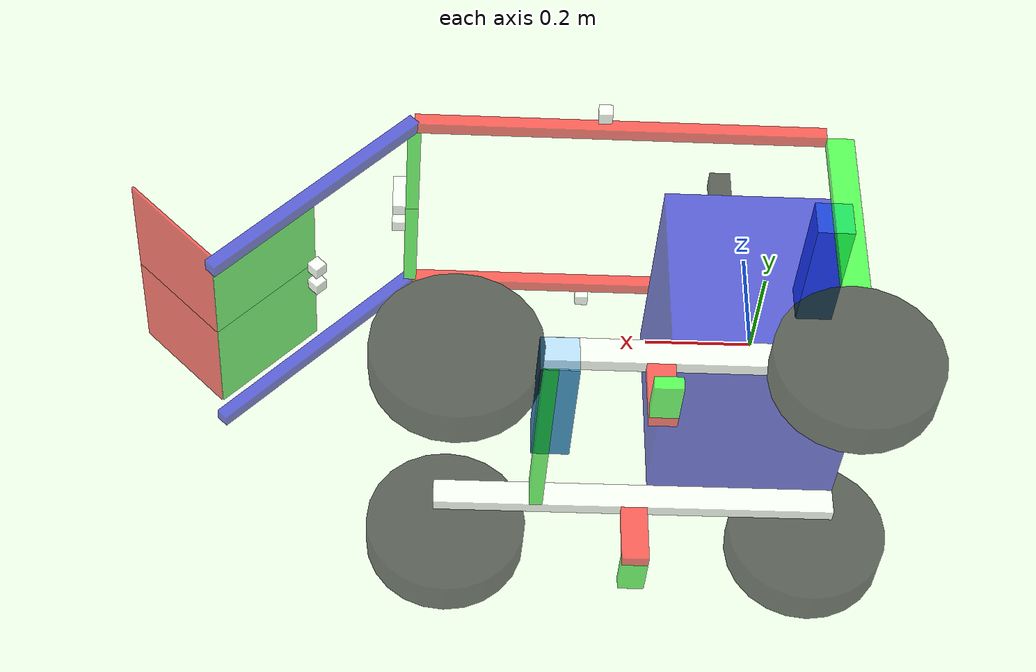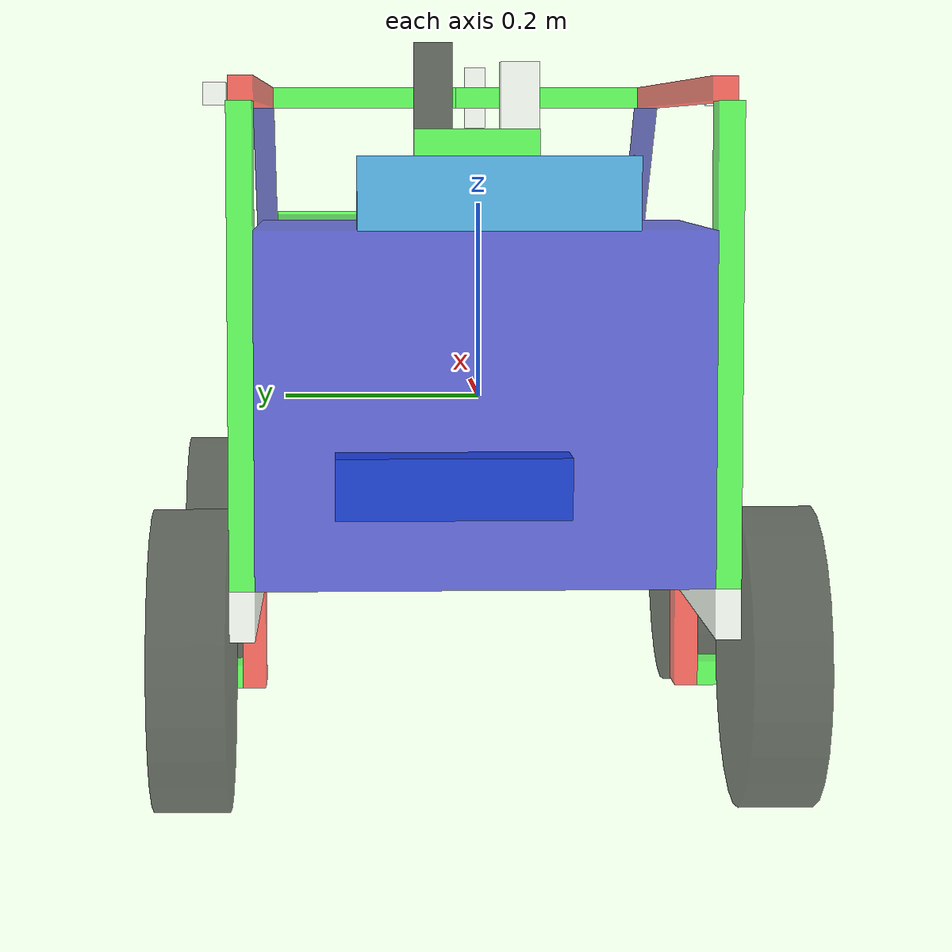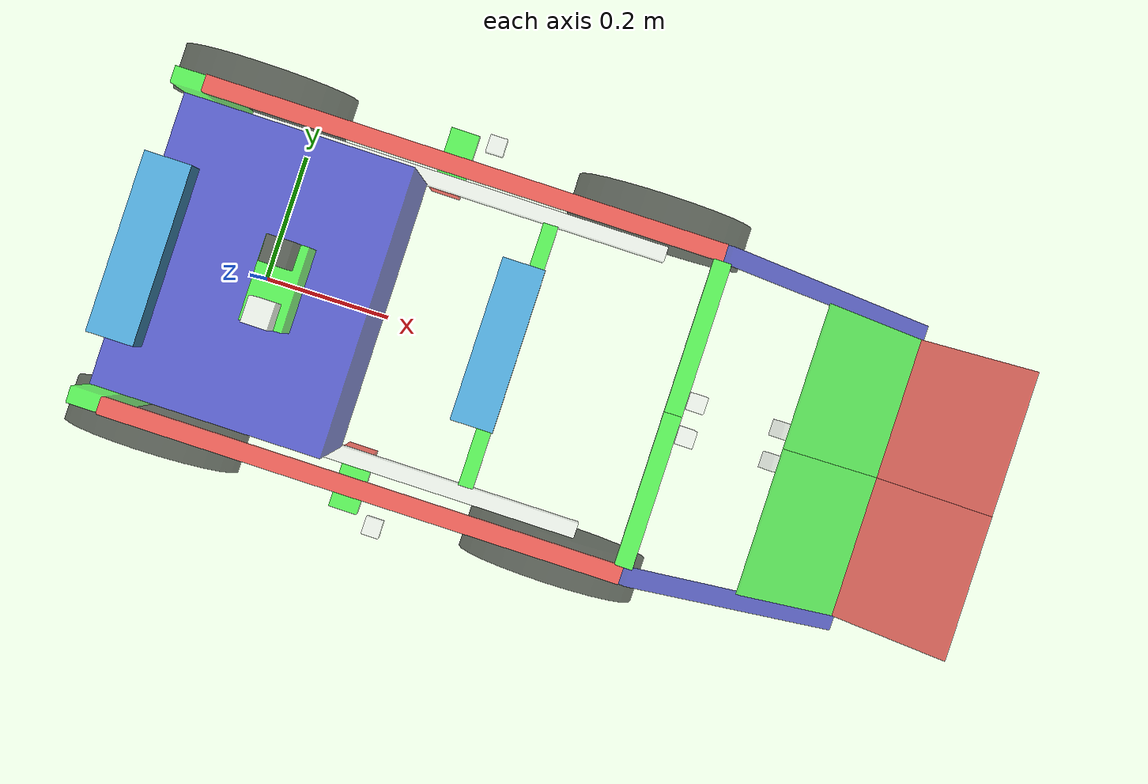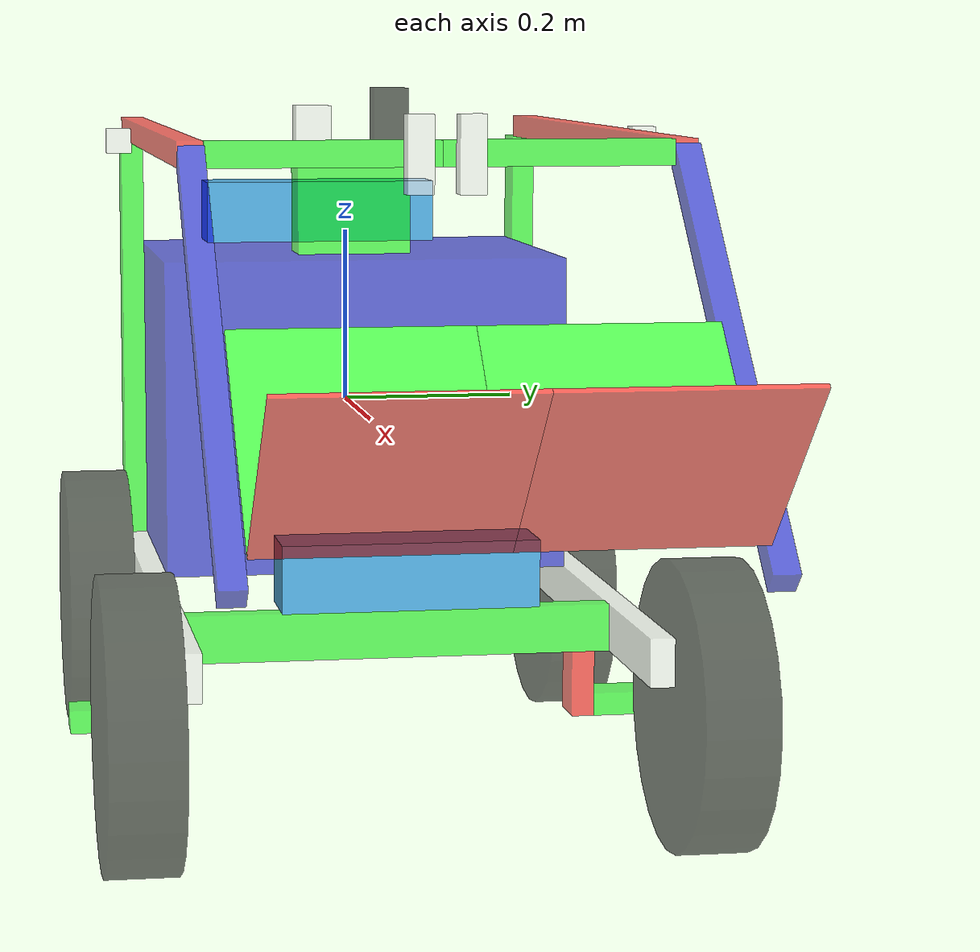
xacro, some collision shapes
<?xml version="1.0"?>
<!--rosrun xacro xacro cr17.xacro > cr17.urdf && roslaunch urdf_tutorial display.launch model:='$(find simulation_2017)/urdf/cr17.urdf' gui:=True-->
<robot name="cr17" xmlns:xacro="http://ros.org/wiki/xacro">

  <xacro:property name="transparency" value="0.6" />

  <xacro:property name="oneinch" value="0.0254" />
  <xacro:property name="pi" value="3.1415" />

  <xacro:property name="width" value=".2" />
  <xacro:property name="leglen" value=".6" />
  <xacro:property name="polelen" value=".2" />
  <xacro:property name="bodylen" value=".6" />

  <xacro:property name="spacebetweenmirrors" value="${oneinch*18}" />

  <xacro:property name="baselen" value="${oneinch*30.5}" /> <!--The base is referred to here is the peice that the wheels attach to-->
  <xacro:property name="basewidth" value="${oneinch}" />
  <xacro:property name="baseheight" value="${oneinch*2}" />

  <xacro:property name="armbaselength" value="${oneinch*2}" />
  <xacro:property name="armbasewidth" value="${oneinch}" />
  <xacro:property name="armbaseheight" value="${oneinch*19}" />

  <xacro:property name="controlsboxlength" value="${oneinch*14.25}" />
  <xacro:property name="controlsboxwidth" value="${oneinch*18}" />
  <xacro:property name="controlsboxheight" value="${oneinch*14}" />

  <xacro:property name="wheeldiam" value="${oneinch*12}" />
  <xacro:property name="wheelwidth" value="${oneinch*3}" />
  <xacro:property name="wheeldrop" value="${oneinch*2}" />

  <xacro:property name="linactmntwidth" value="${oneinch*2}" />
  <xacro:property name="linactmntdistancefromback" value="${oneinch*14.5+linactmntwidth/2}" /> <!--The distance the linear actuator lower mount is from the back of the robot-->
  <xacro:property name="linactmntverticallength" value="${oneinch*4.5}" />
  <xacro:property name="linactmnthorizontallength" value="${oneinch*3.5}" />
  <xacro:property name="linactmntlength" value="${oneinch}" />

  <xacro:property name="upperarmaxlebardistance" value="${oneinch}" />
  <xacro:property name="upperarmlength" value="${oneinch*30.75}" /><!--originally 31in-->
  <xacro:property name="upperarmwidth" value="${oneinch}" />
  <xacro:property name="upperarmheight" value="${oneinch}" />
  <xacro:property name="upperlinactmntdist" value="${oneinch*16.68}" />

  <xacro:property name="lowerarmangle" value="2.35619" />
  <xacro:property name="lowerarmlength" value="${oneinch*20}" />
  <xacro:property name="lowerarmwidth" value="${oneinch}" />
  <xacro:property name="lowerarmheight" value="${oneinch}" />

  <xacro:property name="scooplinactmountbarlength" value="${oneinch*3}" />
  <xacro:property name="scooplinactmountbaroffset" value="${oneinch*7}" />

  <xacro:property name="scooplength" value="${oneinch*8.6875}" />
  <xacro:property name="scoopheight" value="${oneinch*9.6875}" />
  <xacro:property name="scoopwidth" value="${oneinch*18}" />
  <xacro:property name="scoopdistancefromaxis" value="0.03" /> <!--get actual value -->
  <xacro:property name="scoopdistanceabovecornerofaxis" value="0.04" /> <!-- get actual value -->
  <xacro:property name="scoopaxisbackfrombar" value="${oneinch}" /> <!--get actual value -->
  <xacro:property name="scoopaxisabovebar" value="${oneinch/2}" /> <!--get actual value-->

  <xacro:property name="scoopplaneangle" value="${pi/2}" />

  <xacro:property name="scoopactmountdown" value="0.02" /> <!--get actual value -->
  <xacro:property name="scoopactmountback" value="0.03" /> <!-- get actual value -->
  <xacro:property name="scoopactmountin" value="${oneinch*8}" /> <!--based on the drawing having the center line of the actuator and inch past the offset, doublecheck-->

  <xacro:property name="fronthorizontalsupportcontrolsboxoffset" value="${oneinch*8.5}" />
  <xacro:property name="fronthorizontalsupportlength" value="${oneinch*18}" />
  <xacro:property name="fronthorizontalsupportwidth" value="${oneinch}" />
  <xacro:property name="fronthorizontalsupportheight" value="${oneinch*2}" />

  <xacro:property name="lidarmountheight" value="0.1" /> <!--get an actual value-->
  <xacro:property name="hokuyolength" value="0.04" /><!--get an actual value-->
  <xacro:property name="hokuyowidth" value="0.04" /><!--get an actual value-->
  <xacro:property name="hokuyoheight" value="0.09" /><!--get an actual value-->
  <xacro:property name="sicklength" value="0.04" /><!--get an actual value-->
  <xacro:property name="sickwidth" value="0.04" /><!--get an actual value-->
  <xacro:property name="sickheight" value="0.07" /><!--get an actual value-->

  <material name="blue">
    <color rgba="0 0 .8 ${transparency}"/>
  </material>

  <material name="black">
    <color rgba="0 0 0 ${transparency}"/>
  </material>

  <material name="white">
    <color rgba="1 1 1 ${transparency}"/>
  </material>

  <material name="red">
    <color rgba="1 0 0 ${transparency}"/>
  </material>

  <material name="green">
    <color rgba="0 1 0 ${transparency}"/>
  </material>

  <xacro:macro name="default_inertial" params="mass">
    <inertial>
      <mass value="${mass}" />
      <inertia ixx="1.0" ixy="0.0" ixz="0.0" iyy="1.0" iyz="0.0" izz="1.0" />
    </inertial>
  </xacro:macro>

  <link name="base_link">
    <visual>
      <geometry>
        <box size="${controlsboxlength} ${controlsboxwidth} ${controlsboxheight}"/>
      </geometry>
      <material name="blue"/>
    </visual>
    <collision>
      <geometry>
        <box size="${controlsboxlength} ${controlsboxwidth} ${controlsboxheight}"/>
      </geometry>
    </collision>
    <xacro:default_inertial mass="0"/>
  </link>
  <gazebo reference="base_link">
    <material>Gazebo/Blue</material>
  </gazebo>

  <xacro:macro name="wheel" params="prefix suffix reflect">
    <link name="${prefix}_${suffix}_wheel">
      <visual>
        <origin xyz="0 0 0" rpy="${pi/2} 0 0" />
        <geometry>
          <cylinder radius="${wheeldiam/2}" length="${wheelwidth}"/>
        </geometry>
        <material name="black"/>
        <origin xyz="0 0 0" rpy="0 0 0" />
      </visual>
      <collision>
        <origin xyz="0 0 0" rpy="${pi/2} 0 0" />
        <geometry>
          <cylinder radius="${wheeldiam/2}" length="${wheelwidth}"/>
        </geometry>
        <origin xyz="0 0 0" rpy="0 0 0" />
      </collision>
      <xacro:default_inertial mass="1"/>
    </link>
    <joint name="${prefix}_${suffix}_wheel_joint" type="continuous">
      <axis xyz="0 1 0" rpy="0 0 0" />
      <parent link="${prefix}_${suffix}_wheel_mount"/>
      <child link="${prefix}_${suffix}_wheel"/>
      <origin xyz="0 0 0" rpy="0 0 0"/>
    </joint>

    <!-- This block provides the simulator (Gazebo) with information on a few additional
    physical properties. See http://gazebosim.org/tutorials/?tut=ros_urdf for more-->
    <gazebo reference="${prefix}_${suffix}_wheel">
      <mu1 value="200.0"/>
      <mu2 value="100.0"/>
      <kp value="10000000.0" />
      <kd value="1.0" />
      <material>Gazebo/Grey</material>
    </gazebo>

    <!-- This block connects the wheel joint to an actuator (motor), which informs both
    simulation and visualization of the robot -->
    <transmission name="${prefix}_${suffix}_wheel_trans" type="SimpleTransmission">
      <type>transmission_interface/SimpleTransmission</type>
      <actuator name="${prefix}_${suffix}_wheel_motor">
        <mechanicalReduction>1</mechanicalReduction>
      </actuator>
      <joint name="${prefix}_${suffix}_wheel_joint">
        <hardwareInterface>VelocityJointInterface</hardwareInterface>
      </joint>
    </transmission>
  </xacro:macro>

  <xacro:macro name="side_base" params="prefix reflect">
    <link name="${prefix}_armbase">
      <visual>
        <geometry>
          <box size="${armbaseheight} ${armbasewidth} ${armbaselength}"/>
        </geometry>
        <origin xyz="0 0 ${armbaseheight/2}" rpy="0 ${pi/2} 0"/>
        <material name="green"/>
      </visual>
      <collision>
        <geometry>
          <box size="0 0 0"/>
        </geometry>
        <origin xyz="0 0 ${armbaseheight/2}" rpy="0 ${pi/2} 0"/>
      </collision>
      <xacro:default_inertial mass="3"/>
    </link>
    <gazebo reference="${prefix}_armbase">
      <material>Gazebo/White</material>
    </gazebo>

    <joint name="base_to_${prefix}_leg" type="fixed">
      <parent link="base_link"/>
      <child link="${prefix}_base"/>
      <origin xyz="${baselen/2- controlsboxlength/2} ${reflect*(controlsboxwidth/2+basewidth/2)} -${controlsboxheight/2+baseheight/2}" />
    </joint>

    <link name="${prefix}_base">
      <visual>
        <geometry>
          <box size="${baselen} ${basewidth} ${baseheight}"/>
        </geometry>
        <material name="white"/>
      </visual>
      <collision>
        <geometry>
          <box size="${baselen} ${basewidth} ${baseheight}"/>
        </geometry>
      </collision>
      <xacro:default_inertial mass="3"/>
    </link>
    <gazebo reference="${prefix}_base">
      <material>Gazebo/White</material>
    </gazebo>

    <joint name="${prefix}_base_joint" type="fixed">
      <parent link="${prefix}_base"/>
      <child link="${prefix}_armbase"/>
      <origin xyz="-${baselen/2-armbaselength/2} 0 ${baseheight/2}"/>
    </joint>

    <link name="${prefix}_front_wheel_mount">
      <visual>
        <geometry>
          <box size="0 0 0"/>
        </geometry>
        <material name="white"/>
      </visual>
      <collision>
        <geometry>
          <box size="0 0 0"/>
        </geometry>
      </collision>
      <xacro:default_inertial mass="1"/>
    </link>
    <joint name="${prefix}_front_wheel_mount_joint"  type="fixed">
      <parent link="${prefix}_base"/>
      <child link="${prefix}_front_wheel_mount"/>
      <origin xyz="${baselen/2-oneinch} ${reflect*(wheelwidth/2+basewidth/2)} -${wheeldrop}"/>
    </joint>

    <link name="${prefix}_back_wheel_mount">
      <visual>
        <geometry>
          <box size="0 0 0"/>
        </geometry>
        <material name="white"/>
      </visual>
      <collision>
        <geometry>
          <box size="0 0 0"/>
        </geometry>
      </collision>
      <xacro:default_inertial mass="1"/>
    </link>
    <joint name="${prefix}_back_wheel_mount_joint"  type="fixed">
      <parent link="${prefix}_base"/>
      <child link="${prefix}_back_wheel_mount"/>
      <origin xyz="-${baselen/2-oneinch*2} ${reflect*(wheelwidth/2+basewidth/2)} -${wheeldrop}"/>
    </joint>

    <xacro:wheel prefix="${prefix}" suffix="front" reflect="1"/>
    <xacro:wheel prefix="${prefix}" suffix="back" reflect="-1"/>

    <link name="${prefix}_linactmnt_vert">
      <visual>
        <geometry>
          <box size="${linactmntwidth} ${linactmntlength} ${linactmntverticallength}"/>
        </geometry>
        <material name="red"/>
      </visual>
      <collision>
        <geometry>
          <box size="${linactmntwidth} ${linactmntlength} ${linactmntverticallength}"/>
        </geometry>
      </collision>
      <xacro:default_inertial mass="0.001"/>
    </link>
    <joint name="${prefix}_linactmnt_vert_link" type="fixed">
      <parent link="${prefix}_base"/>
      <child link="${prefix}_linactmnt_vert"/>
      <origin xyz="0 0 -${linactmntverticallength/2+baseheight/2}"/>
    </joint>

    <link name="${prefix}_linactmnt_horiz">
      <visual>
        <geometry>
          <box size="${linactmntwidth} ${linactmntlength} ${linactmnthorizontallength}"/>
        </geometry>
        <material name="green"/>
      </visual>
      <collision>
        <geometry>
          <box size="${linactmntwidth} ${linactmntlength} ${linactmnthorizontallength}"/>
        </geometry>
      </collision>
      <xacro:default_inertial mass="0.001"/>
    </link>
    <joint name="${prefix}_linactmnt_horiz_link" type="fixed">
      <parent link="${prefix}_linactmnt_vert"/>
      <child link="${prefix}_linactmnt_horiz"/>
      <origin xyz="0 ${reflect*(linactmnthorizontallength/2+linactmntlength/2)} -${linactmntverticallength/2-linactmntlength/2}" rpy="${pi/2} 0 0"/>
    </joint>

    <link name="${prefix}_upper_arm">
      <visual>
        <geometry>
          <box size="${upperarmlength} ${upperarmwidth} ${upperarmheight}"/>
        </geometry>
        <origin xyz="${upperarmlength/2} 0 0" rpy="0 0 0"/>
        <material name="red"/>
      </visual>
      <collision>
        <geometry>
          <box size="0 0 0"/>
        </geometry>
      </collision>
      <xacro:default_inertial mass="3"/>
    </link>
    <joint name="${prefix}_armbase_to_upperarm" type="continuous">
      <parent link="${prefix}_armbase"/>
      <child link="${prefix}_upper_arm"/>
      <origin xyz="${upperarmaxlebardistance} 0 ${armbaseheight+upperarmwidth/2}"/>
      <axis xyz="0 1 0"/>
    </joint>

    <transmission name="${prefix}_armbase_to_upperarm_trans" type="SimpleTransmission">
      <type>transmission_interface/SimpleTransmission</type>
      <actuator name="$motor_${prefix}_armbase_to_upperarm">
        <mechanicalReduction>1</mechanicalReduction>
      </actuator>
      <joint name="${prefix}_armbase_to_upperarm">
        <hardwareInterface>PositionJointInterface</hardwareInterface>
      </joint>
    </transmission>

    <link name="${prefix}_upper_linear_actuator_mount">
      <visual>
        <geometry>
          <box size="${oneinch} ${oneinch} ${oneinch}"/>
        </geometry>
        <material name="white"/>
      </visual>
      <collision>
        <geometry>
          <box size="0 0 0"/>
        </geometry>
      </collision>
      <xacro:default_inertial mass="0.001"/>
    </link>
    <joint name="${prefix}_upper_arm_to_upper_linear_actuator_mount" type="fixed">
      <parent link="${prefix}_upper_arm"/>
      <child link="${prefix}_upper_linear_actuator_mount"/>
      <origin xyz="${upperlinactmntdist} ${reflect*linactmnthorizontallength/2} 0"/>
    </joint>

    <link name="${prefix}_lower_arm">
      <visual>
        <geometry>
          <box size="${lowerarmlength} ${lowerarmwidth} ${lowerarmheight}"/>
        </geometry>
        <origin xyz="${lowerarmlength/2} 0 0" rpy="0 0 0"/>
        <material name="blue"/>
      </visual>
      <collision>
        <geometry>
          <box size="0 0 0"/>
        </geometry>
      </collision>
      <xacro:default_inertial mass="3"/>
    </link>
    <joint name="${prefix}_upperarm_to_lower_arm" type="fixed">
      <parent link="${prefix}_upper_arm"/>
      <child link="${prefix}_lower_arm"/>
      <origin xyz="${upperarmlength} 0 0" rpy="0 ${pi-lowerarmangle} 0"/>
    </joint>

    <link name="${prefix}_lower_brace_bar">
      <visual>
        <geometry>
          <box size="${spacebetweenmirrors/2} ${oneinch} ${oneinch}"/>
        </geometry>
        <origin xyz="${spacebetweenmirrors/4} 0 0"/>
        <material name="green"/>
      </visual>
      <collision>
        <geometry>
          <box size="0 0 0"/>
        </geometry>
      </collision>
      <xacro:default_inertial mass="0" />
    </link>
    <joint name="${prefix}_upper_arm_to_lower_arm_brace_bar" type="fixed">
      <parent link="${prefix}_upper_arm"/>
      <child link="${prefix}_lower_brace_bar"/>
      <origin xyz="${upperarmlength} ${reflect*(-upperarmwidth/2)} 0" rpy="0 0 ${reflect*(-pi/2)}"/>
    </joint>

    <link name="${prefix}_scoop_actuator_mount_bar">
      <visual>
        <geometry>
          <box size="${oneinch} ${oneinch} ${scooplinactmountbarlength}"/>
        </geometry>
        <material name="white"/>
      </visual>
      <collision>
        <geometry>
          <box size="0 0 0"/>
        </geometry>
      </collision>
      <xacro:default_inertial mass="0.001" />
    </link>
    <joint name="to_${prefix}_scoop_actuator_mount_bar" type="fixed" >
      <parent link="${prefix}_lower_brace_bar"/>
      <child link="${prefix}_scoop_actuator_mount_bar" />
      <origin xyz="${scooplinactmountbaroffset+oneinch/2+oneinch/2} ${reflect*oneinch} 0"/>
    </joint>

    <link name="${prefix}_scoop_axis">
      <visual>
        <geometry>
          <box size="0 0 0"/>
        </geometry>
      </visual>
      <xacro:default_inertial mass="0.001" />
    </link>
    <link name="${prefix}_scoop_back_plane">
      <visual>
        <geometry>
          <box size="${scoopheight} ${scoopwidth/2} 0.005" />
        </geometry>
        <material name="green"/>
        <origin xyz="${-scoopheight/2} ${-reflect*scoopwidth/4} 0" />
      </visual>
      <xacro:default_inertial mass="0.001" />
    </link>
    <link name="${prefix}_scoop_lower_plane">
      <visual>
        <geometry>
          <box size="0.005 ${scoopwidth/2} ${scooplength}" />
        </geometry>
        <material name="red"/>
        <origin xyz="0 ${-reflect*scoopwidth/4} ${scooplength/2}" />
      </visual>
      <xacro:default_inertial mass="0.001" />
    </link>
    <joint name="${prefix}_scoop_axis_to_scoop" type="fixed">
      <parent link="${prefix}_scoop_axis"/>
      <child link="${prefix}_scoop_back_plane"/>
      <origin xyz="0 0 0"/>
    </joint>
    <joint name="${prefix}_scoop_plane_attach" type="fixed">
      <parent link="${prefix}_scoop_back_plane"/>
      <child link="${prefix}_scoop_lower_plane"/>
      <origin xyz="0 0 0" rpy="0 ${pi/2-scoopplaneangle} 0"/>
    </joint>
    <joint name="${prefix}_lower_arm_to_scoop_axis" type="continuous">
      <parent link="${prefix}_lower_arm"/>
      <child link="${prefix}_scoop_axis"/>
      <origin xyz="${lowerarmlength-scoopaxisbackfrombar} ${-reflect*lowerarmwidth/2} ${scoopaxisabovebar+oneinch/2}"/>
      <axis xyz="0 1 0" rpy="0 0 0" />
    </joint>

    <transmission name="${prefix}_scoop_trans" type="SimpleTransmission">
      <type>transmission_interface/SimpleTransmission</type>
      <actuator name="$motor_${prefix}_scoop">
        <mechanicalReduction>1</mechanicalReduction>
      </actuator>
      <joint name="${prefix}_lower_arm_to_scoop_axis">
        <hardwareInterface>PositionJointInterface</hardwareInterface>
      </joint>
    </transmission>

    <link name="${prefix}_edge_of_scoop">
      <visual>
        <geometry>
          <box size="0 0 0" />
        </geometry>
        <material name="red"/>
        <origin xyz="0 ${-reflect*scoopwidth/4} ${scooplength/2}" />
      </visual>
      <xacro:default_inertial mass="0.00001" />
    </link>
    <joint name="${prefix}_edge_of_scoop" type="fixed">
      <parent link="${prefix}_scoop_lower_plane"/>
      <child link="${prefix}_edge_of_scoop"/>
      <origin xyz="0 0 ${scooplength}"/>
    </joint>

    <link name="${prefix}_scoop_actuator_mount">
      <visual>
        <geometry>
          <box size="${oneinch} ${oneinch} ${oneinch}"/>
        </geometry>
        <material name="white"/>
      </visual>
    </link>
    <joint name="${prefix}_scoop_actuator_mount_joint" type="fixed">
      <parent link="${prefix}_scoop_back_plane"/>
      <child link="${prefix}_scoop_actuator_mount"/>
      <origin xyz="-${scoopheight-scoopactmountdown} ${-reflect*scoopactmountin} -${scoopactmountback}"/>
    </joint>
  </xacro:macro>

  <xacro:side_base prefix="right" reflect="-1" />
  <xacro:side_base prefix="left" reflect="1" />

  <xacro:macro name="kinect" params="prefix parentlink">
    <link name="${prefix}_kinect">
      <inertial>
        <mass value="0"/>
        <inertia ixx="1.0" ixy="0.0" ixz="0.0" iyy="1.0" iyz="0.0" izz="1.0"/>
      </inertial>
    </link>
    <gazebo reference="${prefix}_kinect">
      <material>Gazebo/Black</material>
    </gazebo>
    <joint name="${prefix}_toKinect" type="fixed">
      <parent link="${parentlink}"/>
      <child link="${prefix}_kinect"/>
      <origin rpy="0 0 0" xyz="0.01 0 0.04"/>
      <!--change the middle number of the rpy on this line to adjust kinect pitch -->
    </joint>
    <joint name="${prefix}_camera_rgb_joint" type="fixed">
      <origin rpy="0 0 0" xyz="0 0 0"/>
      <parent link="${prefix}_kinect"/>
      <child link="${prefix}_camera_rgb_frame"/>
    </joint>
    <link name="${prefix}_camera_rgb_frame"/>
    <joint name="${prefix}_camera_rgb_optical_joint" type="fixed">
      <origin rpy="-1.57079632679 0 -1.57079632679" xyz="0 0 0"/>
      <parent link="${prefix}_camera_rgb_frame"/>
      <child link="${prefix}_camera_rgb_optical_frame"/>
    </joint>
    <link name="${prefix}_camera_rgb_optical_frame"/>
    <joint name="${prefix}_camera_joint" type="fixed">
      <origin rpy="0 0 0" xyz="-0.031 0.0125 -0.016"/>
      <parent link="${prefix}_camera_rgb_frame"/>
      <child link="${prefix}_camera_link"/>
    </joint>
    <link name="${prefix}_camera_link">
      <visual>
        <origin rpy="0 0 1.57079632679" xyz="0 0 0"/>
        <geometry>
          <mesh filename="package://simulation_2017/meshes/kinect.dae"/>
        </geometry>
      </visual>
      <collision>
        <origin rpy="0 0 0" xyz="0.0 0.0 0.0"/>
        <geometry>
          <box size="0.07271 0.27794 0.073"/>
        </geometry>
      </collision>
      <inertial>
        <mass value="0.564"/>
        <origin xyz="0 0 0"/>
        <inertia ixx="0.003881243" ixy="0.0" ixz="0.0" iyy="0.000498940" iyz="0.0" izz="0.003879257"/>
      </inertial>
    </link>
    <joint name="${prefix}_camera_depth_joint" type="fixed">
      <origin rpy="0 0 0" xyz="0 0.025 0"/>
      <parent link="${prefix}_camera_rgb_frame"/>
      <child link="${prefix}_camera_depth_frame"/>
    </joint>
    <link name="${prefix}_camera_depth_frame"/>
    <joint name="${prefix}_camera_depth_optical_joint" type="fixed">
      <origin rpy="-1.57079632679 0 -1.57079632679" xyz="0 0 0"/>
      <parent link="${prefix}_camera_depth_frame"/>
      <child link="${prefix}_camera_depth_optical_frame"/>
    </joint>
    <link name="${prefix}_camera_depth_optical_frame"/>
    <gazebo reference="${prefix}_camera_link">
      <sensor name="${prefix}_camera" type="depth">
        <always_on>true</always_on>
        <update_rate>20.0</update_rate>
        <camera>
          <horizontal_fov>1.0471975512</horizontal_fov>
          <image>
            <format>R8G8B8</format>
            <width>640</width>
            <height>480</height>
          </image>
          <clip>
            <near>0.05</near>
            <far>8.0</far>
          </clip>
        </camera>
        <plugin filename="libgazebo_ros_openni_kinect.so" name="${prefix}_kinect_camera_controller">
          <cameraName>${prefix}_camera</cameraName>
          <alwaysOn>true</alwaysOn>
          <updateRate>10</updateRate>
          <imageTopicName>rgb/image_raw</imageTopicName>
          <depthImageTopicName>depth/image_raw</depthImageTopicName>
          <pointCloudTopicName>depth/points</pointCloudTopicName>
          <cameraInfoTopicName>rgb/camera_info</cameraInfoTopicName>
          <depthImageCameraInfoTopicName>depth/camera_info</depthImageCameraInfoTopicName>
          <frameName>${prefix}_camera_depth_optical_frame</frameName>
          <baseline>0.1</baseline>
          <distortion_k1>0.0</distortion_k1>
          <distortion_k2>0.0</distortion_k2>
          <distortion_k3>0.0</distortion_k3>
          <distortion_t1>0.0</distortion_t1>
          <distortion_t2>0.0</distortion_t2>
          <pointCloudCutoff>0.4</pointCloudCutoff>
        </plugin>
      </sensor>
    </gazebo>
  </xacro:macro>

  <link name="rear_kinect_mount">
    <visual>
      <geometry>
        <box size="${oneinch} ${oneinch} 0.001"/>
      </geometry>
      <material name="white"/>
    </visual>
  </link>
  <joint name="to_rear_kinect_mount" type="fixed">
    <parent link="base_link" />
    <child link="rear_kinect_mount"/>
    <origin xyz="-${controlsboxlength/2} 0 ${controlsboxheight/2+oneinch/2}" rpy="0 0 ${pi}"/>
  </joint>

  <xacro:kinect prefix="rear" parentlink="rear_kinect_mount"/>

  <link name="front_horizontal_support">
    <visual>
      <geometry>
        <box size="${fronthorizontalsupportwidth} ${fronthorizontalsupportlength} ${fronthorizontalsupportheight}" />
      </geometry>
      <material name="green"/>
    </visual>
  </link>
  <joint name="to_front_horizontal_support" type="fixed">
    <parent link="base_link"/>
    <child link="front_horizontal_support"/>
    <origin xyz="${fronthorizontalsupportcontrolsboxoffset+controlsboxlength/2} 0 -${controlsboxheight/2+fronthorizontalsupportheight/2}" />
  </joint>

  <link name="front_kinect_mount">
    <visual>
      <geometry>
        <box size="${oneinch} ${oneinch} 0.001"/>
      </geometry>
      <material name="white"/>
    </visual>
  </link>
  <joint name="to_front_kinect_mount" type="fixed">
    <!-- We need to move the front kinect, this is so we can switch between the original position and the proposed new location for tests-->
    <parent link="front_horizontal_support" />
    <origin xyz="0 0 ${fronthorizontalsupportheight/2+oneinch/2}" rpy="0 0 0"/>

    <child link="front_kinect_mount"/>
  </joint>

  <xacro:kinect prefix="front" parentlink="front_kinect_mount"/>

  <xacro:macro name="lidar" params="prefix link">
      <!-- hokuyo -->
      <gazebo reference="${link}">
        <sensor name="${prefix}_lidar_sensor" type="ray">
          <pose>0 0 0 0 0 0</pose>
          <visualize>true</visualize>
          <update_rate>40</update_rate>
          <ray>
            <scan>
              <horizontal>
                <samples>720</samples>
                <resolution>1</resolution>
                <min_angle>-1.75</min_angle>
                <max_angle>1.75</max_angle>
              </horizontal>
            </scan>
            <range>
              <min>0.10</min>
              <max>50.0</max>
              <resolution>0.01</resolution>
            </range>
            <noise>
              <type>gaussian</type>
              <mean>0.0</mean>
              <stddev>0.01</stddev>
            </noise>
          </ray>
          <plugin filename="libgazebo_ros_laser.so" name="gazebo_ros_${prefix}_lidar_controller">
            <topicName>${prefix}_scan</topicName>
            <frameName>${link}</frameName>
          </plugin>
        </sensor>
      </gazebo>
  </xacro:macro>

  <link name="lidar_mount">
    <visual>
      <geometry>
        <box size="${hokuyolength+(2*oneinch)+sicklength} ${hokuyowidth+oneinch} ${lidarmountheight}"/>
      </geometry>
      <material name="green"/>
    </visual>
  </link>
  <joint name="to_lidar_mount" type="fixed">
    <parent link="base_link" />
    <child link="lidar_mount"/>
    <origin xyz="${controlsboxlength/2-(hokuyowidth+oneinch)/2-4*(oneinch)} 0 ${controlsboxheight/2+lidarmountheight/2}" rpy="0 0 ${pi/2}"/>
  </joint>

  <link name="hokuyo_lidar">
    <visual>
      <geometry>
        <box size="${hokuyolength} ${hokuyowidth} ${hokuyoheight}"/>
      </geometry>
      <material name="black"/>
    </visual>
  </link>
  <joint name="lidar_mount_to_hokuyo" type="fixed">
    <parent link="lidar_mount"/>
    <child link="hokuyo_lidar"/>
    <origin xyz="${(hokuyolength+(2*oneinch)+sicklength)/2-hokuyolength/2} 0 ${hokuyoheight/2+lidarmountheight/2}"/>
  </joint>
  <xacro:lidar prefix="hokuyo" link="hokuyo_lidar"/>

  <link name="sick_lidar">
    <visual>
      <geometry>
        <box size="${sicklength} ${sickwidth} ${sickheight}"/>
      </geometry>
      <material name="white"/>
    </visual>
  </link>
  <joint name="lidar_mount_to_sick" type="fixed">
    <parent link="lidar_mount"/>
    <child link="sick_lidar"/>
    <origin xyz="-${(hokuyolength+(2*oneinch)+sicklength)/2-sicklength/2} 0 ${sickheight/2+lidarmountheight/2}" rpy="0 0 ${pi}"/>
  </joint>
  <xacro:lidar prefix="sick" link="sick_lidar"/>

  <!-- Gazebo plugin for ROS Control -->
  <gazebo>
    <plugin name="gazebo_ros_control" filename="libgazebo_ros_control.so">
      <robotNamespace>/</robotNamespace>
    </plugin>
  </gazebo>

</robot>
